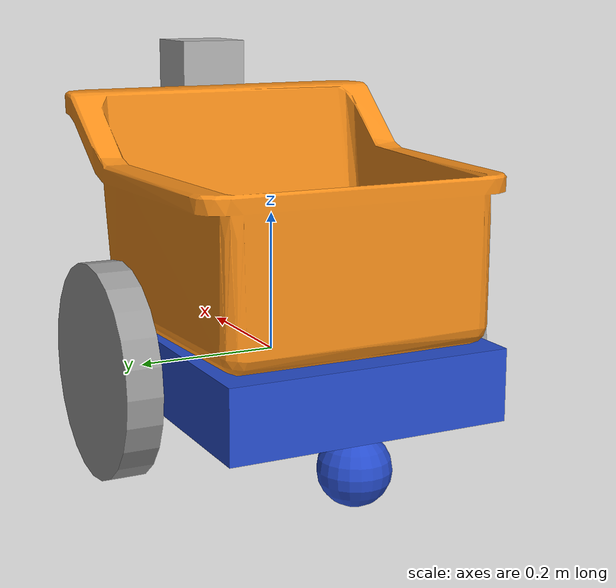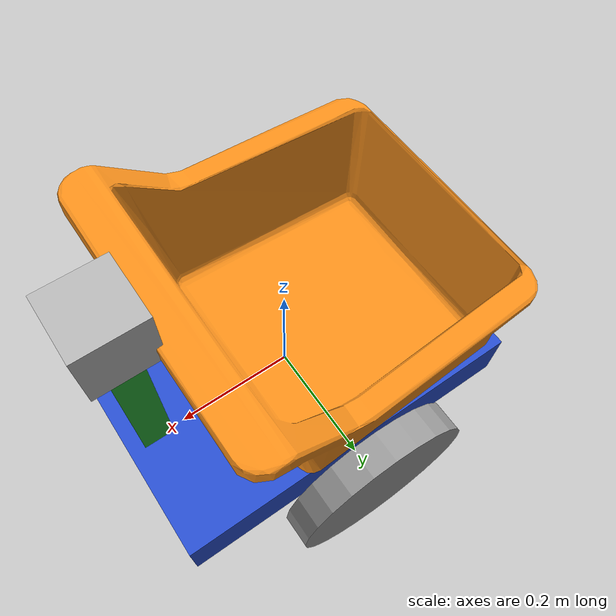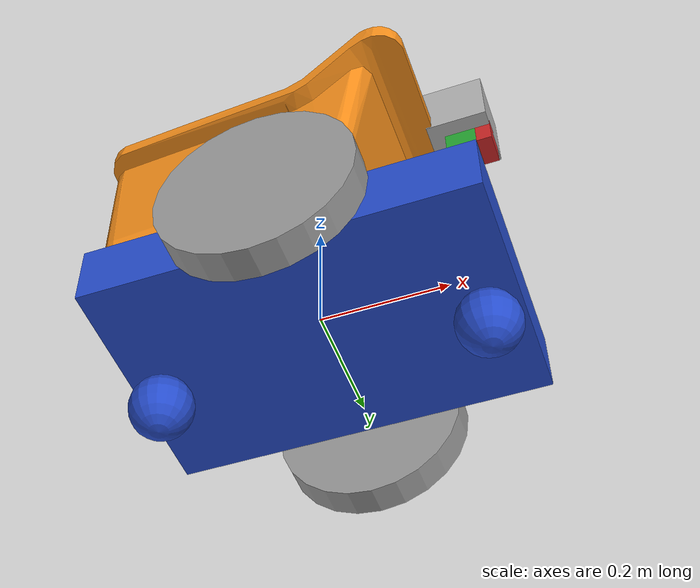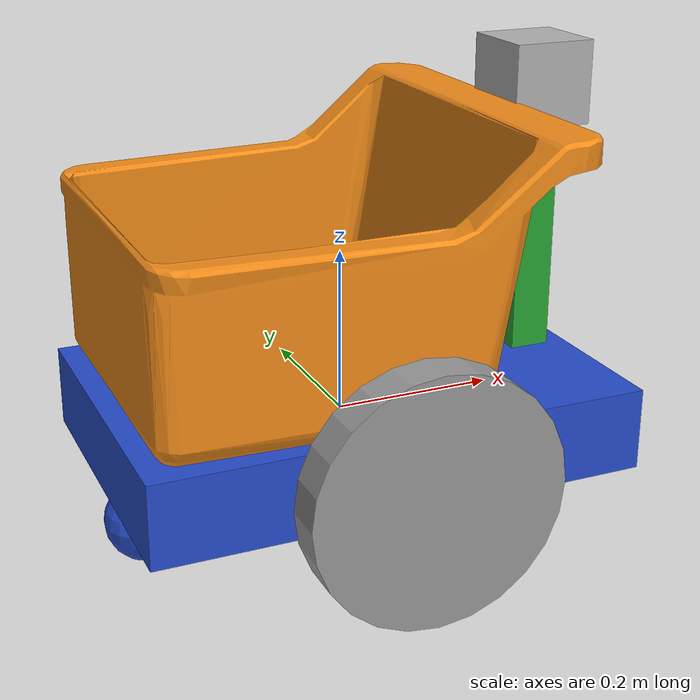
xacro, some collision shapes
<?xml version='1.0'?>

<robot name="dumpster" xmlns:xacro="http://www.ros.org/wiki/xacro">

<xacro:include filename="$(find dumpster)/urdf/dumpster.gazebo" />

  <link name="robot_footprint"></link>

<!-- Chassis & caster wheels -->

  <joint name="robot_footprint_joint" type="fixed">
    <origin xyz="0 0 0" rpy="0 0 0" />
    <parent link="robot_footprint"/>
    <child link="chassis" />
  </joint>

  <link name='chassis'>
    <pose>0 0 0.15 0 0 0</pose>

    <inertial>
      <mass value="15.0"/>
      <origin xyz="0.0 0 0" rpy=" 0 0 0"/>
      <inertia
          ixx="0.1" ixy="0" ixz="0"
          iyy="0.1" iyz="0"
          izz="0.1"
      />
    </inertial>

    <collision name='collision'>
      <origin xyz="0.0 0 0" rpy=" 0 0 0"/>
      <geometry>
        <box size=".6 .4 .1"/>
      </geometry>
    </collision>

    <visual name='chassis_visual'>
      <origin xyz="0.0 0 0" rpy=" 0 0 0"/>
      <geometry>
        <box size=".6 .4 .1"/>
      </geometry>
    </visual>

    <collision name='back_caster_collision'>
      <origin xyz="-0.25 0 -0.1" rpy=" 0 0 0"/>
      <geometry>
        <sphere radius="0.0499"/>
      </geometry>
    </collision>

    <visual name='back_caster_visual'>
      <origin xyz="-0.25 0 -0.1" rpy=" 0 0 0"/>
      <geometry>
        <sphere radius="0.05"/>
      </geometry>
    </visual>

    <collision name='front_caster_collision'>
      <origin xyz="0.25 0 -0.1" rpy=" 0 0 0"/>
      <geometry>
        <sphere radius="0.0499"/>
      </geometry>
    </collision>

    <visual name='front_caster_visual'>
      <origin xyz="0.25 0 -0.1" rpy=" 0 0 0"/>
      <geometry>
        <sphere radius="0.05"/>
      </geometry>
    </visual>

  </link>

<!-- Dump box -->

    <joint name="dump_box_joint" type="fixed">
    <origin xyz="0 0 0.1" rpy="1.57079 0 1.57079" />
    <parent link="chassis"/>
    <child link="dump_box" />
  </joint>

  <link name='dump_box'>
    <pose>0 0 0 0 0 0</pose>

    <inertial>
      <mass value="0.0"/>
      <origin xyz="0 0 -0.1" rpy=" 0 0 0"/>
      <inertia
          ixx="0.1" ixy="0" ixz="0"
          iyy="0.1" iyz="0"
          izz="0.1"
      />
    </inertial>

    <collision name='collision'>
      <origin xyz="0 0 -0.1" rpy=" 0 0 0"/>
      <geometry>
        <box size=".1 .1 .1"/>
      </geometry>
    </collision>

    <visual name='dump_box_visual'>
      <origin xyz="-0.355 -0.05 0.1" rpy=" 0 0 0"/>
        <geometry>
        <mesh filename="package://dumpster/meshes/dumper_bin.dae" scale="0.006 0.006 0.006"/>
        </geometry>
    </visual>
 </link>

<!-- plastic bin -->

<!-- laser pole -->

<joint type="fixed" name="pole_joint">
    <origin xyz="0.25 0.0 0.1" rpy="0 0 0"/>
    <child link="laser_pole"/>
    <parent link="chassis"/>
  </joint>

  <link name='laser_pole'>
    <pose>0 0 0 0 0 0</pose>

    <inertial>
      <mass value="0.2"/>
      <origin xyz="0.0 0 0" rpy=" 0 0 0"/>
      <inertia
          ixx="0.1" ixy="0" ixz="0"
          iyy="0.1" iyz="0"
          izz="0.1"
      />
    </inertial>

    <collision name='collision'>
      <origin xyz="0 0.0 0.1" rpy=" 0 0 0"/>
      <geometry>
        <box size="0.05 0.05 0.3"/>
      </geometry>
    </collision>

    <visual name='laser_pole_visual'>
      <origin xyz="0 0.0 0.1" rpy=" 0 0 0"/>
        <geometry>
        <box size="0.05 0.05 0.3"/>
        </geometry>
    </visual>

  </link>

<!-- Wheels -->

<joint type="continuous" name="left_wheel_hinge">
    <origin xyz="0 0.25 0" rpy="0 0 0"/>
    <child link="left_wheel"/>
    <parent link="chassis"/>
    <axis xyz="0 1 0" rpy="0 0 0"/>
    <limit effort="10000" velocity="1000"/>
    <dynamics damping="1.0" friction="1.0"/>
  </joint>

<link name='left_wheel'>
    <pose>0 0 0.15 0 0 0</pose>

    <inertial>
      <mass value="5.0"/>
      <origin xyz="0.0 0 0" rpy=" 0 1.5707 1.5707"/>
      <inertia
          ixx="0.1" ixy="0" ixz="0"
          iyy="0.1" iyz="0"
          izz="0.1"
      />
    </inertial>

    <collision name='left_wheel_collision'>
      <origin xyz="0.0 0 0" rpy=" 0 1.5707 1.5707"/>
      <geometry>
        <cylinder radius="0.15" length="0.05"/>
      </geometry>
    </collision>

    <visual name='left_wheel_visual'>
      <origin xyz="0.0 0 0" rpy=" 0 1.5707 1.5707"/>
      <geometry>
        <cylinder radius="0.15" length="0.05"/>
      </geometry>
    </visual>
  </link>

<joint type="continuous" name="right_wheel_hinge">
    <origin xyz="0 -0.25 0" rpy="0 0 0"/>
    <child link="right_wheel"/>
    <parent link="chassis"/>
    <axis xyz="0 1 0" rpy="0 0 0"/>
    <limit effort="10000" velocity="1000"/>
    <dynamics damping="1.0" friction="1.0"/>
  </joint>

<link name='right_wheel'>
    <pose>0 0 0.15 0 0 0</pose>

    <inertial>
      <mass value="5.0"/>
      <origin xyz="0.0 0 0" rpy=" 0 1.5707 1.5707"/>
      <inertia
          ixx="0.1" ixy="0" ixz="0"
          iyy="0.1" iyz="0"
          izz="0.1"
      />
    </inertial>

    <collision name='right_wheel_collision'>
      <origin xyz="0.0 0 0" rpy=" 0 1.5707 1.5707"/>
      <geometry>
        <cylinder radius="0.15" length="0.05"/>
      </geometry>
    </collision>

    <visual name='right_wheel_visual'>
      <origin xyz="0.0 0 0" rpy=" 0 1.5707 1.5707"/>
      <geometry>
        <cylinder radius="0.15" length="0.05"/>
      </geometry>
    </visual>
  </link>

<!-- Camera -->

<link name="camera">
    <pose>0 0 0.1 0 0 0</pose>

    <inertial>
      <mass value="0.1"/>
      <origin xyz="0.0 0 0" rpy="0 0 0"/>
      <inertia
          ixx="0.0001" ixy="0" ixz="0"
          iyy="0.0001" iyz="0"
          izz="0.0001"
      />
    </inertial>

    <collision name='camera_collision'>
      <origin xyz="0.0 0 0" rpy="0 0 0"/>
      <geometry>
        <box size="0.05 0.05 0.05"/>
      </geometry>
    </collision>

    <visual name='camera_visual'>
      <origin xyz="0.0 0 0" rpy="0 0 0"/>
      <geometry>
         <box size="0.025 0.05 0.05"/>
      </geometry>
    </visual>
  </link>

<joint type="fixed" name="camera_joint">
    <origin xyz="0.0375 0 0.224" rpy="0 0 0"/>
    <child link="camera"/>
    <parent link="laser_pole"/>
  </joint>

<!-- Laser -->

<link name="hokuyo">
    <pose>0 0 0.1 0 0 0</pose>

    <inertial>
      <mass value="0.1"/>
      <origin xyz="0.0 0 0" rpy="0 0 0"/>
      <inertia
          ixx="0.0001" ixy="0" ixz="0"
          iyy="0.0001" iyz="0"
          izz="0.0001"
      />
    </inertial>

    <collision name='hokuyo_collision'>
      <origin xyz="0.0 0 0" rpy="0 0 0"/>
      <geometry>
        <box size="0.1 0.1 0.1"/>
      </geometry>
    </collision>

    <visual name='hokuyo_visual'>
      <origin xyz="0.0 0 0" rpy="0 0 0"/>
      <geometry>
         <mesh filename="package://udacity_bot/meshes/hokuyo.dae"/>
      </geometry>
    </visual>
  </link>

<joint type="fixed" name="hokuyo_joint">
    <origin xyz="0.0 0 0.285" rpy="0 0 0"/>
    <child link="hokuyo"/>
    <parent link="laser_pole"/>
  </joint>

</robot>
